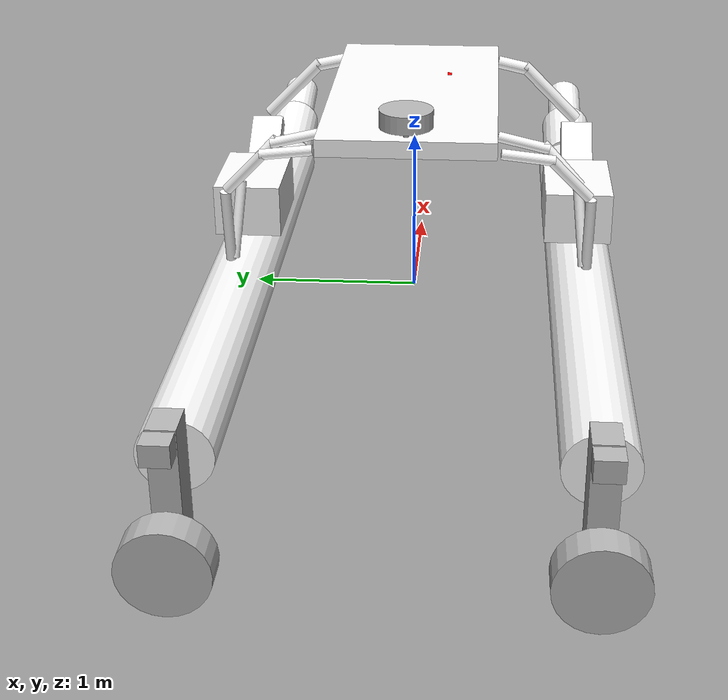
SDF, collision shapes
<sdf version='1.11'>
  <model name='WAM-V'>
    <self_collide>true</self_collide>
    <link name='wamv/base_link'>
      <inertial>
        <pose>0 0 0.1242290748898679 0 0 0</pose>
        <mass>227</mass>
        <inertia>
          <ixx>181.419798421439</ixx>
          <ixy>0</ixy>
          <ixz>0</ixz>
          <iyy>408.20313175477253</iyy>
          <iyz>0</iyz>
          <izz>495.03666666666658</izz>
        </inertia>
      </inertial>
      <collision name='wamv/base_link_fixed_joint_lump__left_float_collision'>
        <pose>-0.40000000000000002 1.03 0.20000000000000001 0 1.5707963267948966 0</pose>
        <geometry>
          <cylinder>
            <length>4</length>
            <radius>0.20000000000000001</radius>
          </cylinder>
        </geometry>
        <surface>
          <contact>
            <collide_bitmask>0x03</collide_bitmask>
          </contact>
        </surface>
      </collision>
      <collision name='wamv/base_link_fixed_joint_lump__left_mid_float_collision_1'>
        <pose>1.8500000000000001 1.03 0.29999999999999999 0 1.3799999999999997 0</pose>
        <geometry>
          <cylinder>
            <length>0.5</length>
            <radius>0.17000000000000001</radius>
          </cylinder>
        </geometry>
        <surface>
          <contact>
            <collide_bitmask>0x03</collide_bitmask>
          </contact>
        </surface>
      </collision>
      <collision name='wamv/base_link_fixed_joint_lump__left_front_float_collision_2'>
        <pose>2.2999999999999998 1.03 0.40000000000000002 0 1.3 0</pose>
        <geometry>
          <cylinder>
            <length>0.45000000000000001</length>
            <radius>0.12</radius>
          </cylinder>
        </geometry>
        <surface>
          <contact>
            <collide_bitmask>0x03</collide_bitmask>
          </contact>
        </surface>
      </collision>
      <collision name='wamv/base_link_fixed_joint_lump__front_left_beam_lower_collision_3'>
        <pose>0.90000000000000002 0.84999999999999998 1 0.78000000000000003 0 0</pose>
        <geometry>
          <cylinder>
            <length>0.5</length>
            <radius>0.040000000000000001</radius>
          </cylinder>
        </geometry>
        <surface>
          <contact>
            <collide_bitmask>0x03</collide_bitmask>
          </contact>
        </surface>
      </collision>
      <collision name='wamv/base_link_fixed_joint_lump__front_left_beam_upper_collision_4'>
        <pose>0.90000000000000002 0.59999999999999998 1.1799999999999999 1.3500000000000001 0 0</pose>
        <geometry>
          <cylinder>
            <length>0.20000000000000001</length>
            <radius>0.040000000000000001</radius>
          </cylinder>
        </geometry>
        <surface>
          <contact>
            <collide_bitmask>0x03</collide_bitmask>
          </contact>
        </surface>
      </collision>
      <collision name='wamv/base_link_fixed_joint_lump__mid_left_beam_lower_collision_5'>
        <pose>-0.65000000000000002 0.98999999999999999 0.69999999999999996 0.099999999999999978 0.25000000000000006 0</pose>
        <geometry>
          <cylinder>
            <length>0.45000000000000001</length>
            <radius>0.029999999999999999</radius>
          </cylinder>
        </geometry>
        <surface>
          <contact>
            <collide_bitmask>0x03</collide_bitmask>
          </contact>
        </surface>
      </collision>
      <collision name='wamv/base_link_fixed_joint_lump__mid_left_beam_medium_collision_6'>
        <pose>-0.56999999999999995 0.87 1.05 0.75000000000000033 0.25000000000000017 0</pose>
        <geometry>
          <cylinder>
            <length>0.32000000000000001</length>
            <radius>0.029999999999999999</radius>
          </cylinder>
        </geometry>
        <surface>
          <contact>
            <collide_bitmask>0x03</collide_bitmask>
          </contact>
        </surface>
      </collision>
      <collision name='wamv/base_link_fixed_joint_lump__mid_left_beam_upper_collision_7'>
        <pose>-0.55000000000000004 0.65000000000000002 1.1699999999999999 1.3500000000000001 0.25000000000000011 0</pose>
        <geometry>
          <cylinder>
            <length>0.29999999999999999</length>
            <radius>0.029999999999999999</radius>
          </cylinder>
        </geometry>
        <surface>
          <contact>
            <collide_bitmask>0x03</collide_bitmask>
          </contact>
        </surface>
      </collision>
      <collision name='wamv/base_link_fixed_joint_lump__rear_left_beam_lower_collision_8'>
        <pose>-0.73999999999999999 1.03 0.69999999999999996 0 -0.14999999999999999 0</pose>
        <geometry>
          <cylinder>
            <length>0.45000000000000001</length>
            <radius>0.029999999999999999</radius>
          </cylinder>
        </geometry>
        <surface>
          <contact>
            <collide_bitmask>0x03</collide_bitmask>
          </contact>
        </surface>
      </collision>
      <collision name='wamv/base_link_fixed_joint_lump__rear_left_beam_medium_collision_9'>
        <pose>-0.79000000000000004 0.91000000000000003 1.05 0.75000000000000022 -0.14999999999999999 -1.4035390109491176e-17</pose>
        <geometry>
          <cylinder>
            <length>0.32000000000000001</length>
            <radius>0.029999999999999999</radius>
          </cylinder>
        </geometry>
        <surface>
          <contact>
            <collide_bitmask>0x03</collide_bitmask>
          </contact>
        </surface>
      </collision>
      <collision name='wamv/base_link_fixed_joint_lump__rear_left_beam_upper_collision_10'>
        <pose>-0.81000000000000005 0.67000000000000004 1.1799999999999999 1.45 -0.14999999999999999 0</pose>
        <geometry>
          <cylinder>
            <length>0.29999999999999999</length>
            <radius>0.029999999999999999</radius>
          </cylinder>
        </geometry>
        <surface>
          <contact>
            <collide_bitmask>0x03</collide_bitmask>
          </contact>
        </surface>
      </collision>
      <collision name='wamv/base_link_fixed_joint_lump__left_joint_collision_11'>
        <pose>0.57999999999999996 1.03 0.59999999999999998 0 -0.59999999999999987 0</pose>
        <geometry>
          <box>
            <size>0.65000000000000002 0.20000000000000001 0.10000000000000001</size>
          </box>
        </geometry>
        <surface>
          <contact>
            <collide_bitmask>0x03</collide_bitmask>
          </contact>
        </surface>
      </collision>
      <collision name='wamv/base_link_fixed_joint_lump__right_float_collision_12'>
        <pose>-0.40000000000000002 -1.03 0.20000000000000001 0 1.5707963267948966 0</pose>
        <geometry>
          <cylinder>
            <length>4</length>
            <radius>0.20000000000000001</radius>
          </cylinder>
        </geometry>
        <surface>
          <contact>
            <collide_bitmask>0x03</collide_bitmask>
          </contact>
        </surface>
      </collision>
      <collision name='wamv/base_link_fixed_joint_lump__right_mid_float_collision_13'>
        <pose>1.8500000000000001 -1.03 0.29999999999999999 0 1.3799999999999997 0</pose>
        <geometry>
          <cylinder>
            <length>0.5</length>
            <radius>0.17000000000000001</radius>
          </cylinder>
        </geometry>
        <surface>
          <contact>
            <collide_bitmask>0x03</collide_bitmask>
          </contact>
        </surface>
      </collision>
      <collision name='wamv/base_link_fixed_joint_lump__right_front_float_collision_14'>
        <pose>2.2999999999999998 -1.03 0.40000000000000002 0 1.3 0</pose>
        <geometry>
          <cylinder>
            <length>0.45000000000000001</length>
            <radius>0.12</radius>
          </cylinder>
        </geometry>
        <surface>
          <contact>
            <collide_bitmask>0x03</collide_bitmask>
          </contact>
        </surface>
      </collision>
      <collision name='wamv/base_link_fixed_joint_lump__front_right_beam_lower_collision_15'>
        <pose>0.90000000000000002 -0.84999999999999998 1 -0.78000000000000003 0 0</pose>
        <geometry>
          <cylinder>
            <length>0.5</length>
            <radius>0.040000000000000001</radius>
          </cylinder>
        </geometry>
        <surface>
          <contact>
            <collide_bitmask>0x03</collide_bitmask>
          </contact>
        </surface>
      </collision>
      <collision name='wamv/base_link_fixed_joint_lump__front_right_beam_upper_collision_16'>
        <pose>0.90000000000000002 -0.59999999999999998 1.1799999999999999 -1.3500000000000001 0 0</pose>
        <geometry>
          <cylinder>
            <length>0.20000000000000001</length>
            <radius>0.040000000000000001</radius>
          </cylinder>
        </geometry>
        <surface>
          <contact>
            <collide_bitmask>0x03</collide_bitmask>
          </contact>
        </surface>
      </collision>
      <collision name='wamv/base_link_fixed_joint_lump__mid_right_beam_lower_collision_17'>
        <pose>-0.65000000000000002 -0.98999999999999999 0.69999999999999996 -0.099999999999999978 0.25000000000000006 0</pose>
        <geometry>
          <cylinder>
            <length>0.45000000000000001</length>
            <radius>0.029999999999999999</radius>
          </cylinder>
        </geometry>
        <surface>
          <contact>
            <collide_bitmask>0x03</collide_bitmask>
          </contact>
        </surface>
      </collision>
      <collision name='wamv/base_link_fixed_joint_lump__mid_right_beam_medium_collision_18'>
        <pose>-0.56999999999999995 -0.87 1.05 -0.75000000000000033 0.25000000000000017 0</pose>
        <geometry>
          <cylinder>
            <length>0.32000000000000001</length>
            <radius>0.029999999999999999</radius>
          </cylinder>
        </geometry>
        <surface>
          <contact>
            <collide_bitmask>0x03</collide_bitmask>
          </contact>
        </surface>
      </collision>
      <collision name='wamv/base_link_fixed_joint_lump__mid_right_beam_upper_collision_19'>
        <pose>-0.55000000000000004 -0.65000000000000002 1.1699999999999999 -1.3500000000000001 0.25000000000000011 0</pose>
        <geometry>
          <cylinder>
            <length>0.29999999999999999</length>
            <radius>0.029999999999999999</radius>
          </cylinder>
        </geometry>
        <surface>
          <contact>
            <collide_bitmask>0x03</collide_bitmask>
          </contact>
        </surface>
      </collision>
      <collision name='wamv/base_link_fixed_joint_lump__rear_right_beam_lower_collision_20'>
        <pose>-0.73999999999999999 -1.03 0.69999999999999996 0 -0.14999999999999999 0</pose>
        <geometry>
          <cylinder>
            <length>0.45000000000000001</length>
            <radius>0.029999999999999999</radius>
          </cylinder>
        </geometry>
        <surface>
          <contact>
            <collide_bitmask>0x03</collide_bitmask>
          </contact>
        </surface>
      </collision>
      <collision name='wamv/base_link_fixed_joint_lump__rear_right_beam_medium_collision_21'>
        <pose>-0.79000000000000004 -0.91000000000000003 1.05 -0.75000000000000022 -0.14999999999999999 1.4035390109491176e-17</pose>
        <geometry>
          <cylinder>
            <length>0.32000000000000001</length>
            <radius>0.029999999999999999</radius>
          </cylinder>
        </geometry>
        <surface>
          <contact>
            <collide_bitmask>0x03</collide_bitmask>
          </contact>
        </surface>
      </collision>
      <collision name='wamv/base_link_fixed_joint_lump__rear_right_beam_upper_collision_22'>
        <pose>-0.81000000000000005 -0.67000000000000004 1.1799999999999999 -1.45 -0.14999999999999999 0</pose>
        <geometry>
          <cylinder>
            <length>0.29999999999999999</length>
            <radius>0.029999999999999999</radius>
          </cylinder>
        </geometry>
        <surface>
          <contact>
            <collide_bitmask>0x03</collide_bitmask>
          </contact>
        </surface>
      </collision>
      <collision name='wamv/base_link_fixed_joint_lump__right_joint_collision_23'>
        <pose>0.57999999999999996 -1.03 0.59999999999999998 0 -0.59999999999999987 0</pose>
        <geometry>
          <box>
            <size>0.65000000000000002 0.20000000000000001 0.10000000000000001</size>
          </box>
        </geometry>
        <surface>
          <contact>
            <collide_bitmask>0x03</collide_bitmask>
          </contact>
        </surface>
      </collision>
      <collision name='wamv/base_link_fixed_joint_lump__top_base_collision_24'>
        <pose>0 0 1.25 0 0 0</pose>
        <geometry>
          <box>
            <size>1.8500000000000001 1 0.10000000000000001</size>
          </box>
        </geometry>
        <surface>
          <contact>
            <collide_bitmask>0x03</collide_bitmask>
          </contact>
        </surface>
      </collision>
      <collision name='wamv/base_link_fixed_joint_lump__left_battery_collision_collision_25'>
        <pose>0 1 0.59999999999999998 0 0 0</pose>
        <geometry>
          <box>
            <size>0.59999999999999998 0.40000000000000002 0.31</size>
          </box>
        </geometry>
        <surface>
          <contact>
            <collide_bitmask>0x03</collide_bitmask>
          </contact>
        </surface>
      </collision>
      <collision name='wamv/base_link_fixed_joint_lump__right_battery_collision_collision_26'>
        <pose>0 -1 0.59999999999999998 0 0 0</pose>
        <geometry>
          <box>
            <size>0.59999999999999998 0.40000000000000002 0.31</size>
          </box>
        </geometry>
        <surface>
          <contact>
            <collide_bitmask>0x03</collide_bitmask>
          </contact>
        </surface>
      </collision>
      <visual name='wamv/base_link_visual'>
        <pose>0 0 0 0 0 0</pose>
        <geometry>
          <mesh>
            <scale>1 1 1</scale>
            <uri>model://wamv/meshes/WAM-V-Base.dae</uri>
          </mesh>
        </geometry>
        <material>
          <diffuse>1 1 1 1</diffuse>
          <specular>1 1 1 1</specular>
          <pbr>
            <metal>
              <albedo_map>./meshes/WAM-V_Albedo.png</albedo_map>
              <normal_map>./meshes/WAM-V_Normal.png</normal_map>
              <roughness_map>./meshes/WAM-V_Roughness.png</roughness_map>
              <metalness_map>./meshes/WAM-V_Metalness.png</metalness_map>
            </metal>
          </pbr>
        </material>
      </visual>
      <visual name='wamv/base_link_fixed_joint_lump__wamv/left_battery_link_visual_1'>
        <pose>0 -0.03000000000000003 0 0 0 0</pose>
        <geometry>
          <mesh>
            <scale>1 1 1</scale>
            <uri>model://wamv/meshes/battery.dae</uri>
          </mesh>
        </geometry>
        <material>
          <diffuse>1 1 1 1</diffuse>
          <specular>1 1 1 1</specular>
          <pbr>
            <metal>
              <albedo_map>./meshes/battery_Albedo.png</albedo_map>
              <normal_map>./meshes/battery_Normal.png</normal_map>
              <roughness_map>./meshes/battery_Roughness.png</roughness_map>
              <metalness_map>./meshes/battery_Metalness.png</metalness_map>
            </metal>
          </pbr>
        </material>
      </visual>
      <visual name='wamv/base_link_fixed_joint_lump__wamv/right_battery_link_visual_2'>
        <pose>0 -2.0299999999999998 0 0 0 0</pose>
        <geometry>
          <mesh>
            <scale>1 1 1</scale>
            <uri>model://wamv/meshes/battery.dae</uri>
          </mesh>
        </geometry>
        <material>
          <diffuse>1 1 1 1</diffuse>
          <specular>1 1 1 1</specular>
          <pbr>
            <metal>
              <albedo_map>./meshes/battery_Albedo.png</albedo_map>
              <normal_map>./meshes/battery_Normal.png</normal_map>
              <roughness_map>./meshes/battery_Roughness.png</roughness_map>
              <metalness_map>./meshes/battery_Metalness.png</metalness_map>
            </metal>
          </pbr>
        </material>
      </visual>
      <visual name='visual_attachment'>
        <pose>-0.5 0 1.3 0 0 0</pose>
        <geometry><sphere><radius>0.02</radius></sphere></geometry>
        <material><ambient>0 1 0 1</ambient><diffuse>0 1 0 1</diffuse></material>
      </visual>
      <sensor name='contact_sensor' type='contact'>
        <contact>
          <collision>wamv/base_link_fixed_joint_lump__top_base_collision_24</collision>
          <collision>wamv/base_link_fixed_joint_lump__left_float_collision</collision>
          <collision>wamv/base_link_fixed_joint_lump__left_mid_float_collision_1</collision>
          <collision>wamv/base_link_fixed_joint_lump__left_front_float_collision_2</collision>
          <collision>wamv/base_link_fixed_joint_lump__right_float_collision_12</collision>
          <collision>wamv/base_link_fixed_joint_lump__right_mid_float_collision_13</collision>
          <collision>wamv/base_link_fixed_joint_lump__right_front_float_collision_14</collision>
          <topic>/vrx/contacts</topic>
        </contact>
        <always_on>true</always_on>
        <update_rate>5</update_rate>
      </sensor>
    </link>
    <joint name='wamv/gps_wamv_joint' type='revolute'>
      <pose relative_to='wamv/base_link'>-0.84999999999999998 0 1.3 0 0 0</pose>
      <parent>wamv/base_link</parent>
      <child>wamv/gps_wamv_link</child>
      <axis>
        <xyz>0 0 1</xyz>
        <limit>
          <lower>0</lower>
          <upper>0</upper>
          <effort>1000</effort>
          <velocity>0</velocity>
        </limit>
        <dynamics>
          <spring_reference>0</spring_reference>
          <spring_stiffness>0</spring_stiffness>
        </dynamics>
      </axis>
    </joint>
    <link name='wamv/gps_wamv_link'>
      <pose relative_to='wamv/gps_wamv_joint'>0 0 0 0 0 0</pose>
      <inertial>
        <pose>0 0 0 0 0 0</pose>
        <mass>1</mass>
        <inertia>
          <ixx>0.0064580000000000002</ixx>
          <ixy>0</ixy>
          <ixz>0</ixz>
          <iyy>0.0064580000000000002</iyy>
          <iyz>0</iyz>
          <izz>0.01125</izz>
        </inertia>
      </inertial>
      <collision name='wamv/gps_wamv_link_fixed_joint_lump__gps_wamv_collision_base_collision'>
        <pose>0 0 0.025000000000000001 0 0 0</pose>
        <geometry>
          <cylinder>
            <length>0.050000000000000003</length>
            <radius>0.014999999999999999</radius>
          </cylinder>
        </geometry>
        <surface>
          <contact>
            <collide_bitmask>0x03</collide_bitmask>
          </contact>
        </surface>
      </collision>
      <collision name='wamv/gps_wamv_link_fixed_joint_lump__gps_wamv_collision_antenna_collision_1'>
        <pose>0 0 0.11 0 0 0</pose>
        <geometry>
          <cylinder>
            <length>0.10000000000000001</length>
            <radius>0.14999999999999999</radius>
          </cylinder>
        </geometry>
        <surface>
          <contact>
            <collide_bitmask>0x03</collide_bitmask>
          </contact>
        </surface>
      </collision>
      <visual name='wamv/gps_wamv_link_fixed_joint_lump__gps_wamv_visual_visual'>
        <pose>0 0 0 0 0 0</pose>
        <geometry>
          <mesh>
            <scale>1 1 1</scale>
            <uri>model://wamv/meshes/gps.dae</uri>
          </mesh>
        </geometry>
      </visual>
      <sensor name='navsat' type='navsat'>
        <always_on>true</always_on>
        <update_rate>20</update_rate>
        <gps/>
      </sensor>
    </link>
    <joint name='wamv/imu_wamv_joint' type='revolute'>
      <pose relative_to='wamv/base_link'>0.29999999999999999 -0.20000000000000001 1.3 0 0 0</pose>
      <parent>wamv/base_link</parent>
      <child>wamv/imu_wamv_link</child>
      <axis>
        <xyz>0 0 1</xyz>
        <limit>
          <lower>0</lower>
          <upper>0</upper>
          <effort>1000</effort>
          <velocity>0</velocity>
        </limit>
        <dynamics>
          <spring_reference>0</spring_reference>
          <spring_stiffness>0</spring_stiffness>
        </dynamics>
      </axis>
    </joint>
    <link name='wamv/imu_wamv_link'>
      <pose relative_to='wamv/imu_wamv_joint'>0 0 0 0 0 0</pose>
      <inertial>
        <pose>0 0 0 0 0 0</pose>
        <mass>0.10000000000000001</mass>
        <inertia>
          <ixx>5.4199999999999998e-06</ixx>
          <ixy>0</ixy>
          <ixz>0</ixz>
          <iyy>2.1039999999999998e-05</iyy>
          <iyz>0</iyz>
          <izz>2.6040000000000001e-05</izz>
        </inertia>
      </inertial>
      <collision name='wamv/imu_wamv_link_fixed_joint_lump__imu_wamv_collision_collision'>
        <pose>0 0 0 0 0 0</pose>
        <geometry>
          <box>
            <size>0.050000000000000003 0.025000000000000001 0.0050000000000000001</size>
          </box>
        </geometry>
        <surface>
          <contact>
            <collide_bitmask>0x03</collide_bitmask>
          </contact>
        </surface>
      </collision>
      <visual name='wamv/imu_wamv_link_fixed_joint_lump__imu_wamv_visual_visual'>
        <pose>0 0 0 0 0 0</pose>
        <geometry>
          <box>
            <size>0.050000000000000003 0.025000000000000001 0.0050000000000000001</size>
          </box>
        </geometry>
        <material>
          <diffuse>1 0 0 1</diffuse>
          <ambient>1 0 0 1</ambient>
        </material>
      </visual>
      <sensor name='imu_wamv_sensor' type='imu'>
        <update_rate>100</update_rate>
        <imu>
          <angular_velocity>
            <x>
              <noise type='gaussian'>
                <mean>0</mean>
                <stddev>0.0089999999999999993</stddev>
                <bias_mean>0.00075000000000000002</bias_mean>
                <bias_stddev>0.0050000000000000001</bias_stddev>
                <dynamic_bias_stddev>2.0000000000000002e-05</dynamic_bias_stddev>
                <dynamic_bias_correlation_time>400</dynamic_bias_correlation_time>
                <precision>0.00025000000000000001</precision>
              </noise>
            </x>
            <y>
              <noise type='gaussian'>
                <mean>0</mean>
                <stddev>0.0089999999999999993</stddev>
                <bias_mean>0.00075000000000000002</bias_mean>
                <bias_stddev>0.0050000000000000001</bias_stddev>
                <dynamic_bias_stddev>2.0000000000000002e-05</dynamic_bias_stddev>
                <dynamic_bias_correlation_time>400</dynamic_bias_correlation_time>
                <precision>0.00025000000000000001</precision>
              </noise>
            </y>
            <z>
              <noise type='gaussian'>
                <mean>0</mean>
                <stddev>0.0089999999999999993</stddev>
                <bias_mean>0.00075000000000000002</bias_mean>
                <bias_stddev>0.0050000000000000001</bias_stddev>
                <dynamic_bias_stddev>2.0000000000000002e-05</dynamic_bias_stddev>
                <dynamic_bias_correlation_time>400</dynamic_bias_correlation_time>
                <precision>0.00025000000000000001</precision>
              </noise>
            </z>
          </angular_velocity>
          <linear_acceleration>
            <x>
              <noise type='gaussian'>
                <mean>0</mean>
                <stddev>0.021000000000000001</stddev>
                <bias_mean>0.050000000000000003</bias_mean>
                <bias_stddev>0.0074999999999999997</bias_stddev>
                <dynamic_bias_stddev>0.00037500000000000001</dynamic_bias_stddev>
                <dynamic_bias_correlation_time>175</dynamic_bias_correlation_time>
                <precision>0.0050000000000000001</precision>
              </noise>
            </x>
            <y>
              <noise type='gaussian'>
                <mean>0</mean>
                <stddev>0.021000000000000001</stddev>
                <bias_mean>0.050000000000000003</bias_mean>
                <bias_stddev>0.0074999999999999997</bias_stddev>
                <dynamic_bias_stddev>0.00037500000000000001</dynamic_bias_stddev>
                <dynamic_bias_correlation_time>175</dynamic_bias_correlation_time>
                <precision>0.0050000000000000001</precision>
              </noise>
            </y>
            <z>
              <noise type='gaussian'>
                <mean>0</mean>
                <stddev>0.021000000000000001</stddev>
                <bias_mean>0.050000000000000003</bias_mean>
                <bias_stddev>0.0074999999999999997</bias_stddev>
                <dynamic_bias_stddev>0.00037500000000000001</dynamic_bias_stddev>
                <dynamic_bias_correlation_time>175</dynamic_bias_correlation_time>
                <precision>0.0050000000000000001</precision>
              </noise>
            </z>
          </linear_acceleration>
          <orientation_reference_frame>
            <localization>ENU</localization>
          </orientation_reference_frame>
        </imu>
      </sensor>
    </link>
    <joint name='wamv/left_chassis_engine_joint' type='revolute'>
      <pose relative_to='wamv/base_link'>-2.3737759999999999 1.0271349999999999 0.31823699999999999 0 0 0</pose>
      <parent>wamv/base_link</parent>
      <child>wamv/left_engine_link</child>
      <axis>
        <xyz>0 0 1</xyz>
        <limit>
          <lower>-3.1415926535897931</lower>
          <upper>3.1415926535897931</upper>
          <effort>1000</effort>
          <velocity>10</velocity>
        </limit>
        <dynamics>
          <damping>10</damping>
          <friction>10</friction>
          <spring_reference>0</spring_reference>
          <spring_stiffness>0</spring_stiffness>
        </dynamics>
      </axis>
    </joint>
    <link name='wamv/left_engine_link'>
      <pose relative_to='wamv/left_chassis_engine_joint'>0 0 0 0 0 0</pose>
      <inertial>
        <pose>0 0 0 0 0 0</pose>
        <mass>15</mass>
        <inertia>
          <ixx>0.88924499999999995</ixx>
          <ixy>0</ixy>
          <ixz>0</ixz>
          <iyy>0.91112499999999996</iyy>
          <iyz>0</iyz>
          <izz>0.078125</izz>
        </inertia>
      </inertial>
      <collision name='wamv/left_engine_link_fixed_joint_lump__left_engine_vertical_axis_collision_collision'>
        <pose>-0.16 0 -0.23999999999999999 0 0 0</pose>
        <geometry>
          <box>
            <size>0.20000000000000001 0.14999999999999999 0.82999999999999996</size>
          </box>
        </geometry>
        <surface>
          <contact>
            <collide_bitmask>0x03</collide_bitmask>
          </contact>
        </surface>
      </collision>
      <collision name='wamv/left_engine_link_fixed_joint_lump__left_engine_rear_end_collision_collision_1'>
        <pose>-0.34000000000000002 0 0.12 0 0 0</pose>
        <geometry>
          <box>
            <size>0.12 0.14999999999999999 0.12</size>
          </box>
        </geometry>
        <surface>
          <contact>
            <collide_bitmask>0x03</collide_bitmask>
          </contact>
        </surface>
      </collision>
      <visual name='wamv/left_engine_link_visual'>
        <pose>0 0 0 0 0 0</pose>
        <geometry>
          <mesh>
            <scale>1 1 1</scale>
            <uri>model://wamv/meshes/engine.dae</uri>
          </mesh>
        </geometry>
      </visual>
    </link>
    <joint name='wamv/left_engine_propeller_joint' type='revolute'>
      <pose relative_to='wamv/left_engine_link'>-0.27815600000000001 0 -0.50937100000000002 0 0 0</pose>
      <parent>wamv/left_engine_link</parent>
      <child>wamv/left_propeller_link</child>
      <axis>
        <xyz>1 0 0</xyz>
        <limit>
          <effort>100</effort>
          <velocity>100</velocity>
          <lower>-inf</lower>
          <upper>inf</upper>
        </limit>
        <dynamics>
          <damping>0.050000000000000003</damping>
          <friction>0.050000000000000003</friction>
          <spring_reference>0</spring_reference>
          <spring_stiffness>0</spring_stiffness>
        </dynamics>
      </axis>
    </joint>
    <link name='wamv/left_propeller_link'>
      <pose relative_to='wamv/left_engine_propeller_joint'>0 0 0 0 0 0</pose>
      <inertial>
        <pose>0 0 0 0 0 0</pose>
        <mass>0.5</mass>
        <inertia>
          <ixx>0.0085450000000000005</ixx>
          <ixy>0</ixy>
          <ixz>0</ixz>
          <iyy>0.0085450000000000005</iyy>
          <iyz>0</iyz>
          <izz>0.0144</izz>
        </inertia>
      </inertial>
      <collision name='wamv/left_propeller_link_fixed_joint_lump__left_propeller_collision_collision'>
        <pose>-0.080000000000000002 0 0 0 1.5707963267948966 0</pose>
        <geometry>
          <cylinder>
            <length>0.17999999999999999</length>
            <radius>0.23999999999999999</radius>
          </cylinder>
        </geometry>
        <surface>
          <contact>
            <collide_bitmask>0x03</collide_bitmask>
          </contact>
        </surface>
      </collision>
      <visual name='wamv/left_propeller_link_visual'>
        <pose>0 0 0 0 0 0</pose>
        <geometry>
          <mesh>
            <scale>1 1 1</scale>
            <uri>model://wamv/meshes/propeller.dae</uri>
          </mesh>
        </geometry>
      </visual>
    </link>
    <joint name='wamv/right_chassis_engine_joint' type='revolute'>
      <pose relative_to='wamv/base_link'>-2.3737759999999999 -1.0271349999999999 0.31823699999999999 0 0 0</pose>
      <parent>wamv/base_link</parent>
      <child>wamv/right_engine_link</child>
      <axis>
        <xyz>0 0 1</xyz>
        <limit>
          <lower>-3.1415926535897931</lower>
          <upper>3.1415926535897931</upper>
          <effort>1000</effort>
          <velocity>10</velocity>
        </limit>
        <dynamics>
          <damping>10</damping>
          <friction>10</friction>
          <spring_reference>0</spring_reference>
          <spring_stiffness>0</spring_stiffness>
        </dynamics>
      </axis>
    </joint>
    <link name='wamv/right_engine_link'>
      <pose relative_to='wamv/right_chassis_engine_joint'>0 0 0 0 0 0</pose>
      <inertial>
        <pose>0 0 0 0 0 0</pose>
        <mass>15</mass>
        <inertia>
          <ixx>0.88924499999999995</ixx>
          <ixy>0</ixy>
          <ixz>0</ixz>
          <iyy>0.91112499999999996</iyy>
          <iyz>0</iyz>
          <izz>0.078125</izz>
        </inertia>
      </inertial>
      <collision name='wamv/right_engine_link_fixed_joint_lump__right_engine_vertical_axis_collision_collision'>
        <pose>-0.16 0 -0.23999999999999999 0 0 0</pose>
        <geometry>
          <box>
            <size>0.20000000000000001 0.14999999999999999 0.82999999999999996</size>
          </box>
        </geometry>
        <surface>
          <contact>
            <collide_bitmask>0x03</collide_bitmask>
          </contact>
        </surface>
      </collision>
      <collision name='wamv/right_engine_link_fixed_joint_lump__right_engine_rear_end_collision_collision_1'>
        <pose>-0.34000000000000002 0 0.12 0 0 0</pose>
        <geometry>
          <box>
            <size>0.12 0.14999999999999999 0.12</size>
          </box>
        </geometry>
        <surface>
          <contact>
            <collide_bitmask>0x03</collide_bitmask>
          </contact>
        </surface>
      </collision>
      <visual name='wamv/right_engine_link_visual'>
        <pose>0 0 0 0 0 0</pose>
        <geometry>
          <mesh>
            <scale>1 1 1</scale>
            <uri>model://wamv/meshes/engine.dae</uri>
          </mesh>
        </geometry>
      </visual>
    </link>
    <joint name='wamv/right_engine_propeller_joint' type='revolute'>
      <pose relative_to='wamv/right_engine_link'>-0.27815600000000001 0 -0.50937100000000002 0 0 0</pose>
      <parent>wamv/right_engine_link</parent>
      <child>wamv/right_propeller_link</child>
      <axis>
        <xyz>1 0 0</xyz>
        <limit>
          <effort>100</effort>
          <velocity>100</velocity>
          <lower>-inf</lower>
          <upper>inf</upper>
        </limit>
        <dynamics>
          <damping>0.050000000000000003</damping>
          <friction>0.050000000000000003</friction>
          <spring_reference>0</spring_reference>
          <spring_stiffness>0</spring_stiffness>
        </dynamics>
      </axis>
    </joint>
    <link name='wamv/right_propeller_link'>
      <pose relative_to='wamv/right_engine_propeller_joint'>0 0 0 0 0 0</pose>
      <inertial>
        <pose>0 0 0 0 0 0</pose>
        <mass>0.5</mass>
        <inertia>
          <ixx>0.0085450000000000005</ixx>
          <ixy>0</ixy>
          <ixz>0</ixz>
          <iyy>0.0085450000000000005</iyy>
          <iyz>0</iyz>
          <izz>0.0144</izz>
        </inertia>
      </inertial>
      <collision name='wamv/right_propeller_link_fixed_joint_lump__right_propeller_collision_collision'>
        <pose>-0.080000000000000002 0 0 0 1.5707963267948966 0</pose>
        <geometry>
          <cylinder>
            <length>0.17999999999999999</length>
            <radius>0.23999999999999999</radius>
          </cylinder>
        </geometry>
        <surface>
          <contact>
            <collide_bitmask>0x03</collide_bitmask>
          </contact>
        </surface>
      </collision>
      <visual name='wamv/right_propeller_link_visual'>
        <pose>0 0 0 0 0 0</pose>
        <geometry>
          <mesh>
            <scale>1 1 1</scale>
            <uri>model://wamv/meshes/propeller.dae</uri>
          </mesh>
        </geometry>
      </visual>
    </link>
    <enable_wind>true</enable_wind>
    <plugin name='gz::sim::systems::Thruster' filename='gz-sim-thruster-system'>
      <joint_name>wamv/left_engine_propeller_joint</joint_name>
      <thrust_coefficient>0.004422</thrust_coefficient>
      <fluid_density>1000</fluid_density>
      <propeller_diameter>0.2</propeller_diameter>
      <velocity_control>true</velocity_control>
      <max_thrust_cmd>2353.53383667818</max_thrust_cmd>
      <namespace>wamv</namespace>
      <topic>thrusters/left/thrust</topic>
      <name>left</name>
    </plugin>
    <plugin name='gz::sim::systems::JointPositionController' filename='gz-sim-joint-position-controller-system'>
      <joint_name>wamv/left_chassis_engine_joint</joint_name>
      <use_velocity_commands>true</use_velocity_commands>
      <topic>wamv/thrusters/left/pos</topic>
      <name>left</name>
    </plugin>
    <plugin name='gz::sim::systems::Thruster' filename='gz-sim-thruster-system'>
      <joint_name>wamv/right_engine_propeller_joint</joint_name>
      <thrust_coefficient>0.004422</thrust_coefficient>
      <fluid_density>1000</fluid_density>
      <propeller_diameter>0.2</propeller_diameter>
      <velocity_control>true</velocity_control>
      <max_thrust_cmd>2353.53383667818</max_thrust_cmd>
      <namespace>wamv</namespace>
      <topic>thrusters/right/thrust</topic>
      <name>right</name>
    </plugin>
    <plugin name='gz::sim::systems::JointPositionController' filename='gz-sim-joint-position-controller-system'>
      <joint_name>wamv/right_chassis_engine_joint</joint_name>
      <use_velocity_commands>true</use_velocity_commands>
      <topic>wamv/thrusters/right/pos</topic>
      <name>right</name>
    </plugin>
    <plugin name='vrx::Surface' filename='libSurface.so'>
      <link_name>wamv/base_link</link_name>
      <hull_length>4.9</hull_length>
      <hull_radius>0.213</hull_radius>
      <fluid_level>0</fluid_level>
      <points>
        <point>0.6 1.03 0</point>
        <point>-1.4 1.03 0</point>
      </points>
      <wavefield>
        <topic>/vrx/wavefield/parameters</topic>
      </wavefield>
    </plugin>
    <plugin name='vrx::Surface' filename='libSurface.so'>
      <link_name>wamv/base_link</link_name>
      <hull_length>4.9</hull_length>
      <hull_radius>0.213</hull_radius>
      <fluid_level>0</fluid_level>
      <points>
        <point>0.6 -1.03 0</point>
        <point>-1.4 -1.03 0</point>
      </points>
      <wavefield>
        <topic>/vrx/wavefield/parameters</topic>
      </wavefield>
    </plugin>
    <plugin name='vrx::SimpleHydrodynamics' filename='libSimpleHydrodynamics.so'>
      <link_name>wamv/base_link</link_name>
      <xDotU>0.0</xDotU>
      <yDotV>0.0</yDotV>
      <nDotR>0.0</nDotR>
      <xU>100.0</xU>
      <xUU>150.0</xUU>
      <yV>100.0</yV>
      <yVV>100.0</yVV>
      <zW>500.0</zW>
      <kP>300.0</kP>
      <kPP>600.0</kPP>
      <mQ>900.0</mQ>
      <mQQ>900.0</mQQ>
      <nR>800.0</nR>
      <nRR>800.0</nRR>
    </plugin>
    <plugin name='gz::sim::systems::DetachableJoint' filename='gz-sim-detachable-joint-system'>
      <parent_link>wamv/base_link</parent_link>
      <child_model>platform</child_model>
      <child_link>dummy_upper</child_link>
      <topic>/vrx/release</topic>
      <suppress_child_warning>true</suppress_child_warning>
    </plugin>
    <plugin name='gz::sim::systems::DetachableJoint' filename='gz-sim-detachable-joint-system'>
      <parent_link>wamv/base_link</parent_link>
      <child_model>tether</child_model>
      <child_link>link_0</child_link>
      <suppress_child_warning>true</suppress_child_warning>
    </plugin>
    <plugin name='gz::sim::systems::PosePublisher' filename='libgz-sim-pose-publisher-system.so'>
      <publish_link_pose>false</publish_link_pose>
      <publish_sensor_pose>true</publish_sensor_pose>
      <publish_collision_pose>false</publish_collision_pose>
      <publish_visual_pose>false</publish_visual_pose>
      <publish_nested_model_pose>false</publish_nested_model_pose>
      <publish_model_pose>false</publish_model_pose>
      <use_pose_vector_msg>true</use_pose_vector_msg>
      <static_publisher>false</static_publisher>
      <static_update_frequency>1</static_update_frequency>
    </plugin>
    <plugin name='gz::sim::systems::JointStatePublisher' filename='gz-sim-joint-state-publisher-system'/>
    <plugin name='gz::sim::systems::OdometryPublisher' filename='gz-sim-odometry-publisher-system'>
      <dimensions>3</dimensions>
      <odom_publish_frequency>50.0</odom_publish_frequency>
      <odom_frame>map</odom_frame>
      <robot_base_frame>wamv/base_link</robot_base_frame>
    </plugin>
    <frame name='wamv/left_chasis_battery_joint' attached_to='wamv/base_link'>
      <pose>0 1 0.45000000000000001 0 0 0</pose>
    </frame>
    <frame name='wamv/left_battery_link' attached_to='wamv/left_chasis_battery_joint'>
      <pose>0 0 0 0 0 0</pose>
    </frame>
    <frame name='wamv/right_chasis_battery_joint' attached_to='wamv/base_link'>
      <pose>0 -1 0.45000000000000001 0 0 0</pose>
    </frame>
    <frame name='wamv/right_battery_link' attached_to='wamv/right_chasis_battery_joint'>
      <pose>0 0 0 0 0 0</pose>
    </frame>
  </model>
</sdf>
